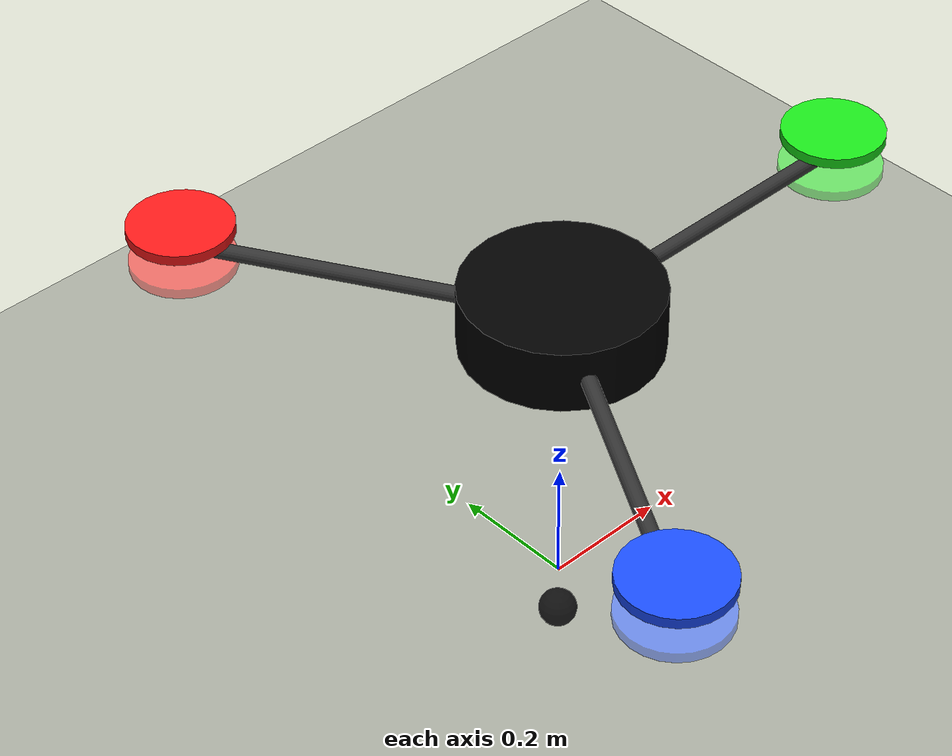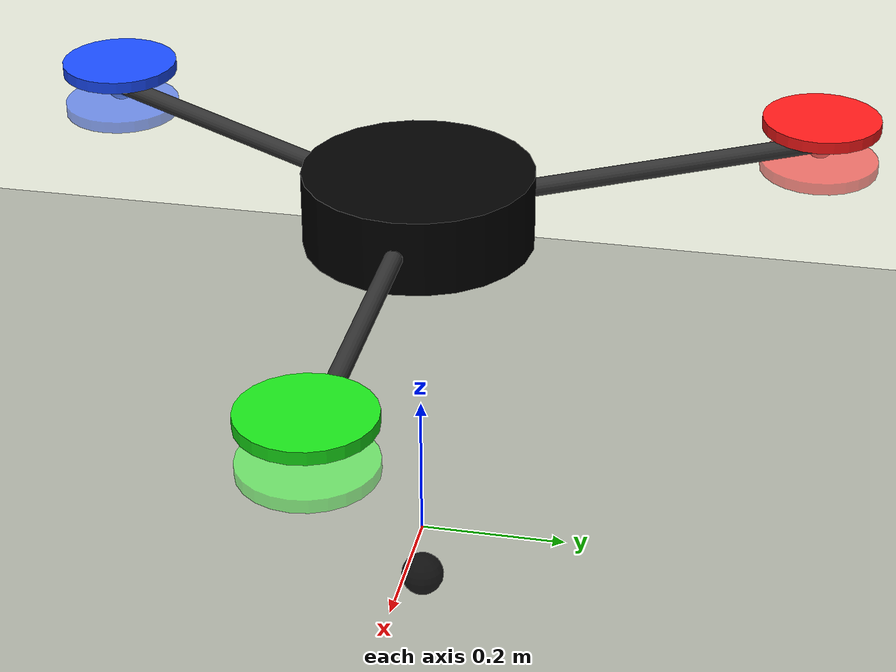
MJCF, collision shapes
<!-- Hopper Serial Equivalent Leg Model for MuJoCo -->
<mujoco model="hopper_serial">
  <compiler angle="radian" meshdir="meshes"/>

  <option timestep="0.001" gravity="0 0 -9.81" integrator="RK4">
    <flag warmstart="enable"/>
  </option>

  <visual>
    <global offwidth="2048" offheight="2048"/>
  </visual>

  <default>
    <joint armature="0.01" damping="0.1" limited="true"/>
    <geom contype="1" conaffinity="1" friction="1.0 0.005 0.0001"/>
    <motor ctrllimited="true"/>
  </default>

  <asset>
    <!-- 背景和地面纹理 -->
    <texture type="skybox" builtin="gradient" rgb1="0.3 0.5 0.7" rgb2="0 0 0" width="512" height="512"/>
    <texture name="plane_tex" type="2d" builtin="checker" rgb1="0.2 0.2 0.2" rgb2="0.3 0.3 0.3" width="512" height="512"/>
    <material name="plane_mat" texture="plane_tex" texrepeat="5 5" reflectance="0.1"/>

    <!-- 机器人材质 -->
    <material name="body_mat" rgba="0.9 0.9 0.9 1"/>
    <material name="leg_mat" rgba="0.7 0.7 0.7 1"/>
    <material name="foot_mat" rgba="0.8 0.2 0.2 1"/>
    <material name="prop_arm_mat" rgba="0.2 0.2 0.2 1"/>
    <!-- Propeller colors: each arm has a coaxial pair (top/bottom) -->
    <!-- Arm 0 = RED, Arm 1 = GREEN, Arm 2 = BLUE -->
    <material name="prop_disc_0a_mat" rgba="1.0 0.1 0.1 0.90"/>
    <material name="prop_disc_0b_mat" rgba="1.0 0.1 0.1 0.55"/>
    <material name="prop_disc_1a_mat" rgba="0.1 0.9 0.1 0.90"/>
    <material name="prop_disc_1b_mat" rgba="0.1 0.9 0.1 0.55"/>
    <material name="prop_disc_2a_mat" rgba="0.1 0.3 1.0 0.90"/>
    <material name="prop_disc_2b_mat" rgba="0.1 0.3 1.0 0.55"/>

    <!-- 原始 STL mesh 文件 -->
    <mesh name="base_link_mesh" file="base_link.STL"/>
    <mesh name="leg_link_mesh" file="Leg_Link.STL"/>
    <mesh name="foot_link_mesh" file="Foot_Link.STL"/>
  </asset>

  <worldbody>
    <!-- Ground plane -->
    <geom name="ground" type="plane" size="10 10 0.1" material="plane_mat"/>

    <!-- Robot base (floating) -->
    <!-- 初始高度 0.5m，让机器人能够触地开始跳跃 -->
    <body name="base_link" pos="0 0 0.5">
      <freejoint name="root"/>

      <!-- IMU site on base -->
      <site name="imu_site" pos="0 0 0" size="0.01"/>

      <!-- Base inertial properties (exactly from Hopper URDF) -->
      <inertial pos="-0.000332 0.000002 -0.023132" mass="2.50681195566096"
                fullinertia="0.0233667280091328 0.023367930568101 0.0460329566307884 2.39896564964331e-05 2.13732387800745e-06 3.38974687864798e-08"/>

      <!-- Base visual (使用原始 STL mesh) -->
      <!-- NOTE: base_link STL is rotated w.r.t. the desired base frame; apply a +30deg yaw correction here. -->
      <!-- quat is wxyz; yaw(+30deg) => [cos(15deg), 0, 0, +sin(15deg)] -->
      <geom name="base_visual" type="mesh" mesh="base_link_mesh"
            quat="0.965926 0 0 0.258819"
            material="body_mat" contype="0" conaffinity="0"/>

      <!-- Base collision (简化为圆柱体，提高仿真稳定性) -->
      <geom name="base_collision" type="cylinder" size="0.15 0.05" pos="0 0 0"
            rgba="0 0 0 0"/>

      <!-- ========== Propeller arms (visual only) ========== -->
      <!-- 三个对称布置的扶臂，与 Hopper4 中的三旋翼等效 -->
      <!-- Propeller positions rotated +30deg to align green prop (Prop1) with +X axis -->
      <!-- Prop 0 = RED, Prop 1 = GREEN (+X), Prop 2 = BLUE -->
      <geom name="prop_arm_0" type="capsule" fromto="0 0 0 -0.284451 0.493317 0"
            size="0.012" material="prop_arm_mat" contype="0" conaffinity="0"/>
      <geom name="prop_arm_1" type="capsule" fromto="0 0 0 0.569451 0.000317 0"
            size="0.012" material="prop_arm_mat" contype="0" conaffinity="0"/>
      <geom name="prop_arm_2" type="capsule" fromto="0 0 0 -0.285 -0.493634 0"
            size="0.012" material="prop_arm_mat" contype="0" conaffinity="0"/>

      <!-- ========== Propeller discs (visual placeholders) ========== -->
      <!-- Coaxial pairs (top/bottom) at each arm tip -->
      <!-- Arm 0 -->
      <geom name="prop_disc_0a" type="cylinder" size="0.08 0.008"
            pos="-0.284451 0.493317 0.030" material="prop_disc_0a_mat" contype="0" conaffinity="0"/>
      <geom name="prop_disc_0b" type="cylinder" size="0.08 0.008"
            pos="-0.284451 0.493317 -0.030" material="prop_disc_0b_mat" contype="0" conaffinity="0"/>
      <!-- Arm 1 -->
      <geom name="prop_disc_1a" type="cylinder" size="0.08 0.008"
            pos="0.569451 0.000317 0.030" material="prop_disc_1a_mat" contype="0" conaffinity="0"/>
      <geom name="prop_disc_1b" type="cylinder" size="0.08 0.008"
            pos="0.569451 0.000317 -0.030" material="prop_disc_1b_mat" contype="0" conaffinity="0"/>
      <!-- Arm 2 -->
      <geom name="prop_disc_2a" type="cylinder" size="0.08 0.008"
            pos="-0.285 -0.493634 0.030" material="prop_disc_2a_mat" contype="0" conaffinity="0"/>
      <geom name="prop_disc_2b" type="cylinder" size="0.08 0.008"
            pos="-0.285 -0.493634 -0.030" material="prop_disc_2b_mat" contype="0" conaffinity="0"/>

      <!-- Propeller thrust reference sites (color-matched) -->
      <!-- Rotated +30deg: green prop (Prop1) now points along +X axis -->
      <site name="prop_site_0" pos="-0.284451 0.493317 0" size="0.02" rgba="1.0 0.2 0.2 0.8"/>
      <site name="prop_site_1" pos="0.569451 0.000317 0" size="0.02" rgba="0.2 1.0 0.2 0.8"/>
      <site name="prop_site_2" pos="-0.285 -0.493634 0" size="0.02" rgba="0.2 0.4 1.0 0.8"/>

      <!-- Hip joint: Roll (around X axis) -->
      <!-- 从 URDF: origin xyz="0 0 -0.0416" -->
      <body name="base_roll_link" pos="0 0 -0.0416">
        <inertial pos="0 0 0" mass="0.06" diaginertia="9.6e-6 9.6e-6 9.6e-6"/>
        <joint name="Leg_Joint_Roll" type="hinge" axis="1 0 0"
               range="-1.0 1.0" damping="0.5"/>
        <geom name="roll_geom" type="sphere" size="0.015" rgba="0.3 0.3 0.3 1"/>

        <!-- Pitch joint (around Y axis) -->
        <body name="roll_pitch_link" pos="0 0 0">
          <inertial pos="0 0 0" mass="0.06" diaginertia="9.6e-6 9.6e-6 9.6e-6"/>
          <joint name="Leg_Joint_Pitch" type="hinge" axis="0 1 0"
                 range="-1.0 1.0" damping="0.5"/>
          <geom name="pitch_geom" type="sphere" size="0.015" rgba="0.3 0.3 0.3 1"/>

          <!-- pitch_leg_link (与 URDF 一致，添加中间链接) -->
          <body name="pitch_leg_link" pos="0 0 0">
            <inertial pos="0 0 0" mass="0.06" diaginertia="9.6e-6 9.6e-6 9.6e-6"/>
            <geom name="pitch_leg_geom" type="sphere" size="0.015" rgba="0.3 0.3 0.3 1"/>

            <!-- Prismatic joint: Leg extension (与 URDF 完全一致) -->
            <body name="Leg_Link" pos="0 0 0">
              <!-- 从 URDF: mass=0.376991118430775 kg, inertia -->
              <inertial pos="0 0 -0.2837" mass="0.376991118430775"
                        diaginertia="0.00724058566836107 0.00724058566836107 4.71238898038469e-06"/>
              <!-- Shift 关节（与 URDF 完全一致）-->
              <!-- axis="0 0 1": 正 Z 轴方向 -->
              <!-- range="0 0.4": shift=0 是最短，shift=0.4 是最长（伸展 40cm）-->
              <!-- 真机版本：无 MJCF 内置弹簧，弹簧力由代码 virtual spring 实现 -->
              <joint name="Leg_Joint_Shift" type="slide" axis="0 0 1"
                     range="0 0.4" damping="0.1" ref="0"/>

            <!-- Leg visual (使用原始 STL mesh) -->
            <geom name="leg_visual" type="mesh" mesh="leg_link_mesh"
                  material="leg_mat" contype="0" conaffinity="0"/>

            <!-- Leg collision: 禁用，避免干扰脚的接触 -->
            <!-- 原来的圆柱体底端比脚还低，会先撞地 -->
            <geom name="leg_collision" type="cylinder" size="0.01 0.20"
                  pos="0 0 -0.20" contype="0" conaffinity="0" rgba="0 0 0 0"/>

            <!-- Foot -->
            <!-- 从 URDF: origin xyz="0 0 -0.5237" -->
            <body name="Foot_Link" pos="0 0 -0.5237">
              <!-- 从 URDF: mass=0.00835483868274579 kg -->
              <inertial pos="0 0 -0.009294" mass="0.00835483868274579"
                        diaginertia="6.20993807755469e-07 6.21007675260879e-07 9.48701641254357e-07"/>

              <!-- Foot visual (使用原始 STL mesh) -->
              <geom name="foot_visual" type="mesh" mesh="foot_link_mesh"
                    material="foot_mat" contype="0" conaffinity="0"/>

              <!-- Foot collision (球体，用于接触检测，完全透明) -->
              <geom name="foot_collision" type="sphere" size="0.03"
                    pos="0 0 -0.015" rgba="0 0 0 0"/>

              <!-- Foot contact site -->
              <site name="foot_site" pos="0 0 -0.03" size="0.01"/>
            </body>
          </body>
        </body>
        </body>
      </body>
    </body>
  </worldbody>

  <actuator>
    <!-- Joint actuators (与 Hopper_rl_t-master URDF effort 完全一致) -->
    <!-- Roll: 20 N·m, Pitch: 20 N·m, Shift: 50 N·m -->
    <!-- Match RL/hardware torque limits (improves leg authority for SRB force tracking) -->
    <motor name="roll_motor" joint="Leg_Joint_Roll" gear="1" ctrlrange="-27 27"/>
    <motor name="pitch_motor" joint="Leg_Joint_Pitch" gear="1" ctrlrange="-27 27"/>
    <!-- Increased shift actuation range for hopping (was -500..500). -->
    <motor name="shift_motor" joint="Leg_Joint_Shift" gear="1" ctrlrange="-2500 2500"/>

    <!-- Propeller thruster placeholders（用于可视化/调试） -->
  </actuator>

  <sensor>
    <!-- IMU sensors on base -->
    <accelerometer name="imu_accel" site="imu_site"/>
    <gyro name="imu_gyro" site="imu_site"/>
    <framequat name="imu_quat" objtype="body" objname="base_link"/>

    <!-- Joint sensors -->
    <jointpos name="roll_pos" joint="Leg_Joint_Roll"/>
    <jointpos name="pitch_pos" joint="Leg_Joint_Pitch"/>
    <jointpos name="shift_pos" joint="Leg_Joint_Shift"/>
    <jointvel name="roll_vel" joint="Leg_Joint_Roll"/>
    <jointvel name="pitch_vel" joint="Leg_Joint_Pitch"/>
    <jointvel name="shift_vel" joint="Leg_Joint_Shift"/>

    <!-- Foot contact -->
    <touch name="foot_touch" site="foot_site"/>
  </sensor>

</mujoco>
